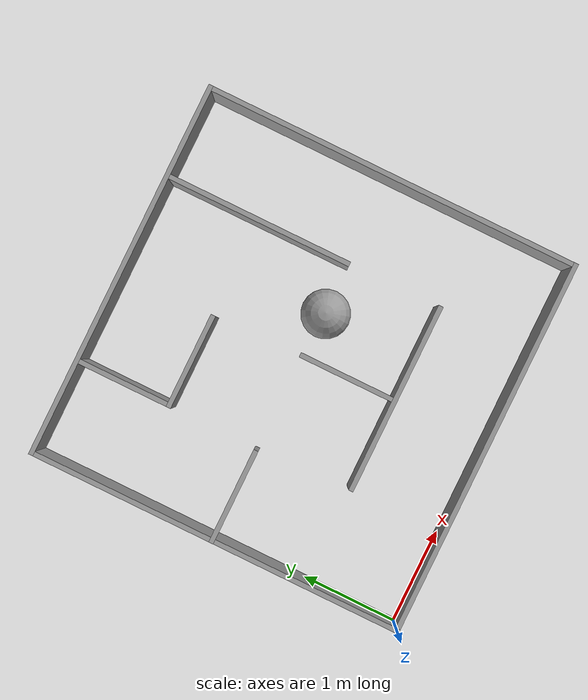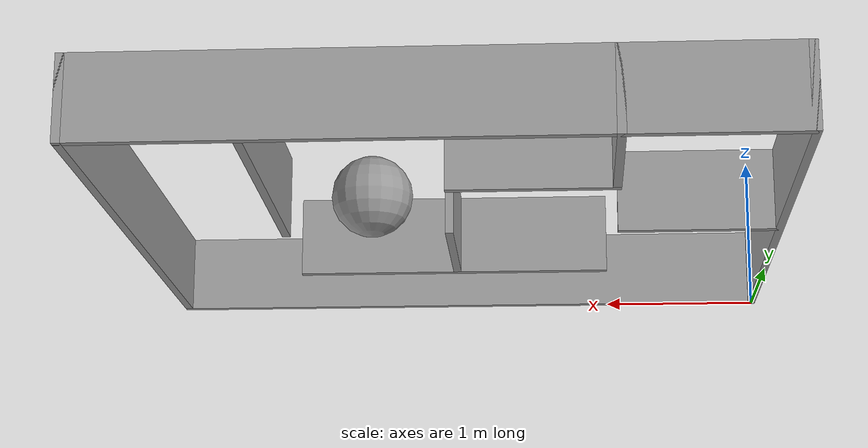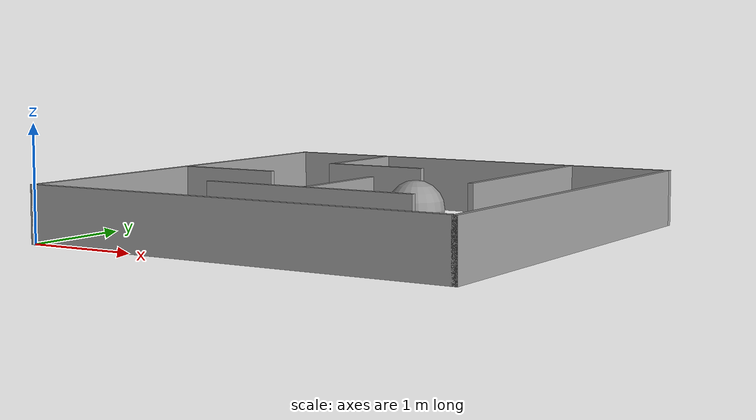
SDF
<?xml version='1.0'?>
<sdf version='1.6'>
  <model name='turtlebot3_maze_navigation_obstacle'>
    <pose frame=''>1.975 1.975 0 0 -0 0</pose>
    <link name='Wall_11'>
      <collision name='Wall_11_Collision'>
        <geometry>
          <box>
            <size>4 0.05 0.5</size>
          </box>
        </geometry>
        <pose frame=''>0 0 0.25 0 -0 0</pose>
      </collision>
      <visual name='Wall_11_Visual'>
        <pose frame=''>0 0 0.25 0 -0 0</pose>
        <geometry>
          <box>
            <size>4 0.05 0.5</size>
          </box>
        </geometry>
        <material>
          <script>
            <uri>file://media/materials/scripts/gazebo.material</uri>
            <name>Gazebo/Grey</name>
          </script>
          <ambient>1 1 1 1</ambient>
        </material>
        <meta>
          <layer>0</layer>
        </meta>
      </visual>
      <pose frame=''>-0 1.975 0 0 -0 0</pose>
    </link>
    <link name='Ball'>
      <collision name='Ball_Collision'>
	<geometry>
	  <sphere>
	    <radius>0.25</radius>
	  </sphere>
	</geometry>
	<pose frame=''>0.5 0 0.25 0 -0 0</pose>
      </collision>
      <visual name='Ball_Visual'>
	<pose frame=''>0.5 0 0.25 0 -0 0</pose>
	<geometry>
	  <sphere>
	    <radius>0.25</radius>
	  </sphere>
        </geometry>
	<material>
	  <script>
	    <name>Gazebo/Grey</name>
	    <uri>file://media/materials/scripts/gazebo.material</uri>
          </script>
          <shader type='vertex'>
	    <normal_map>__default__</normal_map>
	  </shader>
	  <ambient>0.3 0.3 0.3 1</ambient>
	  <diffuse>0.7 0.7 0.7 1</diffuse>
          <specular>0.01 0.01 0.01 1</specular>
          <emissive>0 0 0 1</emissive>
  	</material>
      </visual>
      <pose frame=''>0 0 0 0 -0 0</pose>
    </link>
    <link name='Wall_13'>
      <collision name='Wall_13_Collision'>
        <geometry>
          <box>
            <size>2 0.05 0.5</size>
          </box>
        </geometry>
        <pose frame=''>0 0 0.25 0 -0 0</pose>
      </collision>
      <visual name='Wall_13_Visual'>
        <pose frame=''>0 0 0.25 0 -0 0</pose>
        <geometry>
          <box>
            <size>2 0.05 0.5</size>
          </box>
        </geometry>
        <material>
          <script>
            <uri>file://media/materials/scripts/gazebo.material</uri>
            <name>Gazebo/Grey</name>
          </script>
          <ambient>1 1 1 1</ambient>
        </material>
        <meta>
          <layer>0</layer>
        </meta>
      </visual>
      <pose frame=''>0.05 -0.975 0 0 -0 3.14159</pose>
    </link>
    <link name='Wall_16'>
      <collision name='Wall_16_Collision'>
        <geometry>
          <box>
            <size>1 0.05 0.5</size>
          </box>
        </geometry>
        <pose frame=''>0 0 0.25 0 -0 0</pose>
      </collision>
      <visual name='Wall_16_Visual'>
        <pose frame=''>0 0 0.25 0 -0 0</pose>
        <geometry>
          <box>
            <size>1 0.05 0.5</size>
          </box>
        </geometry>
        <material>
          <script>
            <uri>file://media/materials/scripts/gazebo.material</uri>
            <name>Gazebo/Grey</name>
          </script>
          <ambient>1 1 1 1</ambient>
        </material>
        <meta>
          <layer>0</layer>
        </meta>
      </visual>
      <pose frame=''>0.025 -0.45 0 0 -0 -1.5708</pose>
    </link>
    <link name='Wall_25'>
      <collision name='Wall_25_Collision'>
        <geometry>
          <box>
            <size>2 0.05 0.5</size>
          </box>
        </geometry>
        <pose frame=''>0 0 0.25 0 -0 0</pose>
      </collision>
      <visual name='Wall_25_Visual'>
        <pose frame=''>0 0 0.25 0 -0 0</pose>
        <geometry>
          <box>
            <size>2 0.05 0.5</size>
          </box>
        </geometry>
        <material>
          <script>
            <uri>file://media/materials/scripts/gazebo.material</uri>
            <name>Gazebo/Grey</name>
          </script>
          <ambient>1 1 1 1</ambient>
        </material>
        <meta>
          <layer>0</layer>
        </meta>
      </visual>
      <pose frame=''>1.025 1 0 0 -0 -1.5708</pose>
    </link>
    <link name='Wall_27'>
      <collision name='Wall_27_Collision'>
        <geometry>
          <box>
            <size>1 0.05 0.5</size>
          </box>
        </geometry>
        <pose frame=''>0 0 0.25 0 -0 0</pose>
      </collision>
      <visual name='Wall_27_Visual'>
        <pose frame=''>0 0 0.25 0 -0 0</pose>
        <geometry>
          <box>
            <size>1 0.05 0.5</size>
          </box>
        </geometry>
        <material>
          <script>
            <uri>file://media/materials/scripts/gazebo.material</uri>
            <name>Gazebo/Grey</name>
          </script>
          <ambient>1 1 1 1</ambient>
        </material>
        <meta>
          <layer>0</layer>
        </meta>
      </visual>
      <pose frame=''>-0.975 1.5 0 0 -0 -1.5708</pose>
    </link>
    <link name='Wall_33'>
      <collision name='Wall_33_Collision'>
        <geometry>
          <box>
            <size>1 0.05 0.5</size>
          </box>
        </geometry>
        <pose frame=''>0 0 0.25 0 -0 0</pose>
      </collision>
      <visual name='Wall_33_Visual'>
        <pose frame=''>0 0 0.25 0 -0 0</pose>
        <geometry>
          <box>
            <size>1 0.05 0.5</size>
          </box>
        </geometry>
        <material>
          <script>
            <uri>file://media/materials/scripts/gazebo.material</uri>
            <name>Gazebo/Grey</name>
          </script>
          <ambient>1 1 1 1</ambient>
        </material>
        <meta>
          <layer>0</layer>
        </meta>
      </visual>
      <pose frame=''>-0.5 0.975 0 0 -0 0</pose>
    </link>
    <link name='Wall_36'>
      <collision name='Wall_36_Collision'>
        <geometry>
          <box>
            <size>1 0.05 0.5</size>
          </box>
        </geometry>
        <pose frame=''>0 0 0.25 0 -0 0</pose>
      </collision>
      <visual name='Wall_36_Visual'>
        <pose frame=''>0 0 0.25 0 -0 0</pose>
        <geometry>
          <box>
            <size>1 0.05 0.5</size>
          </box>
        </geometry>
        <material>
          <script>
            <uri>file://media/materials/scripts/gazebo.material</uri>
            <name>Gazebo/Grey</name>
          </script>
          <ambient>1 1 1 1</ambient>
        </material>
        <meta>
          <layer>0</layer>
        </meta>
      </visual>
      <pose frame=''>-1.5 0.025 0 0 -0 0</pose>
    </link>
    <link name='Wall_5'>
      <collision name='Wall_5_Collision'>
        <geometry>
          <box>
            <size>4 0.05 0.5</size>
          </box>
        </geometry>
        <pose frame=''>0 0 0.25 0 -0 0</pose>
      </collision>
      <visual name='Wall_5_Visual'>
        <pose frame=''>0 0 0.25 0 -0 0</pose>
        <geometry>
          <box>
            <size>4 0.05 0.5</size>
          </box>
        </geometry>
        <material>
          <script>
            <uri>file://media/materials/scripts/gazebo.material</uri>
            <name>Gazebo/Grey</name>
          </script>
          <ambient>1 1 1 1</ambient>
        </material>
        <meta>
          <layer>0</layer>
        </meta>
      </visual>
      <pose frame=''>-1.975 -0 0 0 -0 1.5708</pose>
    </link>
    <link name='Wall_7'>
      <collision name='Wall_7_Collision'>
        <geometry>
          <box>
            <size>4 0.05 0.5</size>
          </box>
        </geometry>
        <pose frame=''>0 0 0.25 0 -0 0</pose>
      </collision>
      <visual name='Wall_7_Visual'>
        <pose frame=''>0 0 0.25 0 -0 0</pose>
        <geometry>
          <box>
            <size>4 0.05 0.5</size>
          </box>
        </geometry>
        <material>
          <script>
            <uri>file://media/materials/scripts/gazebo.material</uri>
            <name>Gazebo/Grey</name>
          </script>
          <ambient>1 1 1 1</ambient>
        </material>
        <meta>
          <layer>0</layer>
        </meta>
      </visual>
      <pose frame=''>-0 -1.975 0 0 -0 0</pose>
    </link>
    <link name='Wall_9'>
      <collision name='Wall_9_Collision'>
        <geometry>
          <box>
            <size>4 0.05 0.5</size>
          </box>
        </geometry>
        <pose frame=''>0 0 0.25 0 -0 0</pose>
      </collision>
      <visual name='Wall_9_Visual'>
        <pose frame=''>0 0 0.25 0 -0 0</pose>
        <geometry>
          <box>
            <size>4 0.05 0.5</size>
          </box>
        </geometry>
        <material>
          <script>
            <uri>file://media/materials/scripts/gazebo.material</uri>
            <name>Gazebo/Grey</name>
          </script>
          <ambient>1 1 1 1</ambient>
        </material>
        <meta>
          <layer>0</layer>
        </meta>
      </visual>
      <pose frame=''>1.975 -0 0 0 -0 1.5708</pose>
    </link>
    <static>1</static>
  </model>
</sdf>
